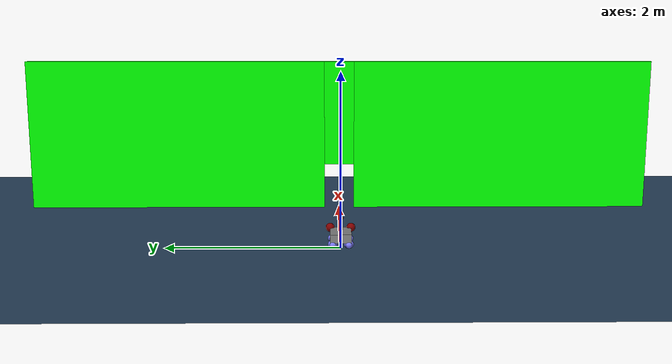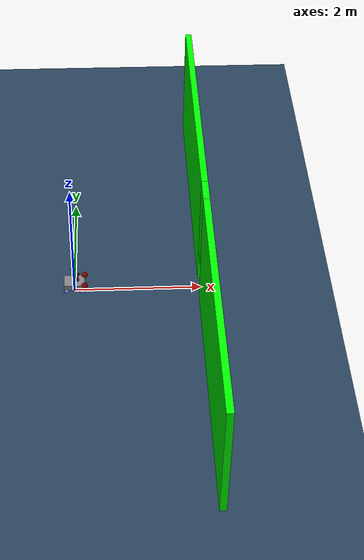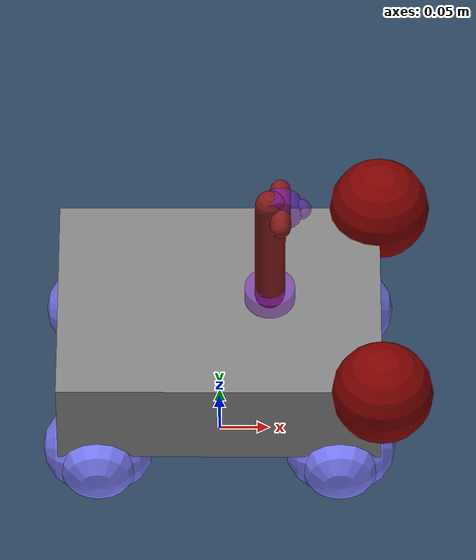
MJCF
<mujoco>
  <compiler autolimits="true"/>

  <extension>
    <plugin plugin="mujoco.sensor.touch_grid"/>
  </extension>

  <asset>
    <texture name="grid" type="2d" builtin="checker" width="512" height="512" rgb1=".1 .2 .3" rgb2=".2 .3 .4"/>
    <material name="grid" texture="grid" texrepeat="1 1" texuniform="true" reflectance=".2"/>
    <mesh name="chasis" scale="1 1 1"
      vertex="  .16 .12 -.05
                .16 .12 .05
                -.16 .12 -.05
                -.16 .12 .05
                .16 -.12 -.05
                .16 -.12 .05
                -.16 -.12 .05
                -.16 -.12 -.05"/>

    <texture type="skybox" builtin="gradient" rgb1="0.6 0.6 0.6" rgb2="0 0 0" width="512" height="512"/>
  </asset>

  <visual>
    <global offwidth="1536" offheight="864"/>
    <rgba haze=".3 .3 .3 1"/>
  </visual>

  <default>
    <joint damping=".03" actuatorfrcrange="-0.5 0.5"/>
    <default class="wheel">
      <geom type="capsule" size=".045 .01" rgba=".5 .5 1 1"/>
    </default>
    <default class="contact site">
      <site type="sphere" rgba="0.5 0 0 1" size="0.02 0.02 0.02"/>
    </default>
  </default>

  <worldbody>
    <light directional="true" diffuse=".8 .8 .8" specular=".2 .2 .2" pos="0 0 5" dir="0 0 -1"/>
    <geom name="floor" type="plane" size="0 0 .01" material="grid"/>

    <body name="wall" pos="2.0 0 0">
        <geom name="wall left" type="box" size="0.05 2.0 1.0" pos="0 2.2 1.0" rgba="0 1 0 1"/>
        <geom name="wall right" type="box" size="0.05 2.0 1.0" pos="0 -2.2 1.0" rgba="0 1 0 1"/>
        <geom name="wall top" type="box" size="0.05 0.2 0.7" pos="0 0 1.3" rgba="0 1 0 1"/>
    </body>

    <body name="car" pos="0 0 .150">
      <joint armature="0" axis="1 0 0" damping="50" limited="false" name="rootx" pos="0 0 0" type="slide" actuatorfrclimited="false"/>
      <joint armature="0" axis="0 1 0" damping="50" limited="false" name="rooty" pos="0 0 0" stiffness="0" type="slide" actuatorfrclimited="false"/>
      <joint armature="0" axis="0 0 1" damping="5" limited="false" name="rootz" pos="0 0 0" stiffness="0" type="hinge" actuatorfrclimited="false"/>

      <site name="center_x" pos="0 0 0" type="sphere" size="0.001" axisangle="1 0 0 0"/>
      <site name="center_y" pos="0 0 0" type="sphere" size="0.001" axisangle="0 0 1 90"/>
      <geom name="chasis" type="mesh" mesh="chasis"/>

      <site name="contact site front left" class="contact site" pos=".16 .12 .05" size=".05 .05 .05"/> <!--class="contact site" -->
      <site name="contact site front right" class="contact site" pos=".16 -.12 .05" size=".05 .05 .05"/> <!-- class="contact site" -->
      <site name="imu site" pos="0 0 0"/>

      <body pos=".05 0 .059" quat="0 0 0 1">
        <geom name="upper arm" type="capsule" size="0.015" fromto="0 0 0  0 0 .131" rgba=".5 .1 .1 1"/>
        <joint name="shoulder"/>
        <geom name="shoulder" type="cylinder" pos="0 0 0" size=".025 .01" rgba=".5 .1 .8 .5" mass="0" group="1"/>

        <body pos="-0.01 0 .126" quat = "0 0 .707 .707">
          <geom name="forearm" type="capsule" size="0.01" fromto="0 0 -.025    0 0 .025" rgba=".5 .1 .1 1" mass="5"/>
          <joint name="elbow"/>
          <geom name="elbow" type="cylinder" pos="0 0 0" size=".02 .01" rgba=".5 .1 .8 .5" mass="0" group="1"/>

          <body pos="0.02 0 0" quat="0.707 0 -0.707 0" name="fixater">
            <geom name="camsphere" type="sphere" size="0.01" pos="0 0 0" rgba=".5 .1 .8 .5" mass="0"/>
            <site name="IMU" pos="0 0 0" type="sphere" size="0.001"/>
            <camera name="fixater" mode="fixed" fovy="45"/>
          </body>
        </body>
      </body>

      <body name="back left wheel" pos=".12 .09 -.07" zaxis="0 1 0">
        <joint name="bleft"/>
        <geom name="blw" class="wheel"/>
      </body>

      <body name="back right wheel" pos=".12 -.09 -.07" zaxis="0 1 0">
        <joint name="bright"/>
        <geom name="brw" class="wheel"/>
      </body>

      <body name="front left wheel" pos="-.12 .09 -.07" zaxis="0 1 0">
        <joint name="fleft"/>
        <geom name="flw" class="wheel"/>
      </body>
      <body name="front right wheel" pos="-.12 -.09 -.07" zaxis="0 1 0">
        <joint name="fright"/>
        <geom name="frw" class="wheel"/>
      </body>

      <body name="back left wheel-alt" pos=".12 .09 -.07" zaxis="1 0 0">
        <joint name="bleft-alt"/>
        <geom name="blw-a" class="wheel"/>
      </body>

      <body name="back right wheel-alt" pos=".12 -.09 -.07" zaxis="1 0 0">
        <joint name="bright-alt"/>
        <geom name="brw-a" class="wheel"/>
      </body>

      <body name="front right wheel-alt" pos="-.12 -.09 -.07" zaxis="1 0 0">
        <joint name="fright-alt"/>
        <geom name="frw-a" class="wheel"/>
      </body>

      <body name="front left wheel-alt" pos="-.12 .09 -.07" zaxis="1 0 0">
        <joint name="fleft-alt"/>
        <geom name="flw-a" class="wheel"/>
      </body>
    </body>
  </worldbody>

  <actuator>
    <motor name="forward" site="center_x" ctrlrange="-100 100"/>
    <motor name="turn" joint="rootz" ctrlrange="-2 2"/>
    <motor name="horizontal" site="center_y" ctrlrange="-100 100"/>
    <velocity name="shoulderv" joint="shoulder" kv=".1" />
    <velocity name="elbowv" joint="elbow" kv=".1" />
  </actuator>
  <sensor>
    <accelerometer name="imu" site="imu site" />

    <plugin name="touch front left" plugin="mujoco.sensor.touch_grid" objtype="site" objname="contact site front left">
      <config key="size" value="20 20"/>
      <config key="fov" value="180 90"/>
      <config key="gamma" value="0.7"/>
      <config key="nchannel" value="3"/>
    </plugin>

    <plugin name="touch front right" plugin="mujoco.sensor.touch_grid" objtype="site" objname="contact site front right">
      <config key="size" value="20 20"/>
      <config key="fov" value="180 90"/>
      <config key="gamma" value="0.7"/>
      <config key="nchannel" value="3"/>
    </plugin>

  </sensor>

</mujoco>
